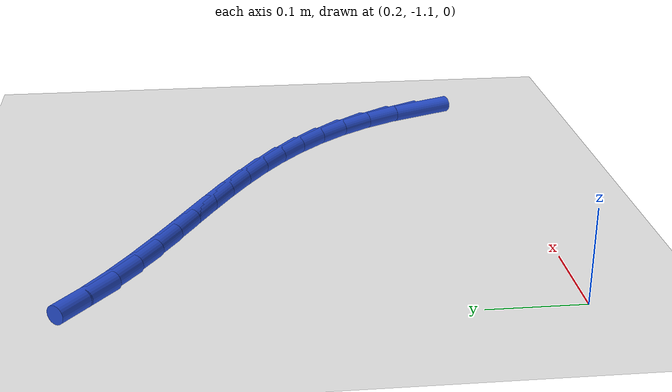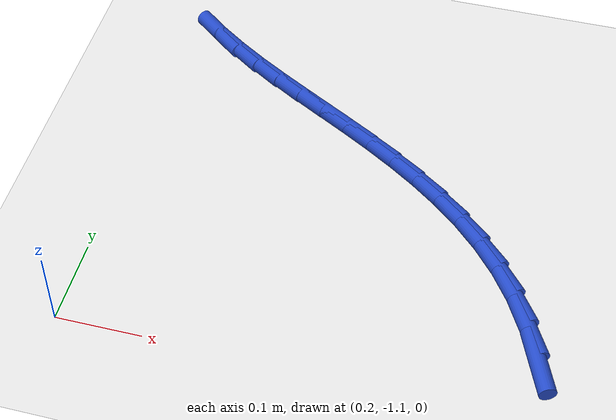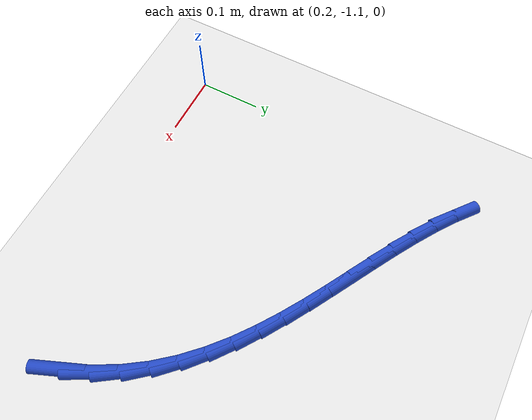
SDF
<sdf version="1.6">
 <world name="default">
  <model name="ground_plane">
   <static>1</static>
   <link name="link">
    <collision name="collision">
     <geometry><plane><normal>0 0 1</normal><size>100 100</size></plane></geometry>
     <surface><friction><ode><mu>100</mu><mu2>50</mu2></ode></friction></surface>
    </collision>
    <visual name="visual">
     <cast_shadows>0</cast_shadows>
     <geometry><plane><normal>0 0 1</normal><size>100 100</size></plane></geometry>
     <material>
      <script><uri>file://media/materials/scripts/gazebo.material</uri><name>Gazebo/WhiteGlow</name></script>
     </material>
    </visual>
   </link>
  </model>
  <model name="line">
   <link name="link_176">
    <pose>0.7184735958914094 -1.0326458961215141 0.01 0 1.57 -1.1803685030335493</pose>
    <collision name="collision">
     <geometry><cylinder><radius>0.01</radius><length>0.08</length></cylinder></geometry>
    </collision>
    <visual name="visual">
     <material>
      <script><name>Gazebo/Blue</name><uri>file://media/materials/scripts/gazebo.material</uri></script>
     </material>
     <geometry><cylinder><radius>0.01</radius><length>0.08</length></cylinder></geometry>
    </visual>
   </link>
   <link name="link_177">
    <pose>0.7015870094879169 -0.991614729692497 0.01 0 1.57 -1.0764579727777817</pose>
    <collision name="collision">
     <geometry><cylinder><radius>0.01</radius><length>0.08</length></cylinder></geometry>
    </collision>
    <visual name="visual">
     <material>
      <script><name>Gazebo/Blue</name><uri>file://media/materials/scripts/gazebo.material</uri></script>
     </material>
     <geometry><cylinder><radius>0.01</radius><length>0.08</length></cylinder></geometry>
    </visual>
   </link>
   <link name="link_178">
    <pose>0.6815076256402162 -0.9543598830570735 0.01 0 1.57 -0.9748035762381747</pose>
    <collision name="collision">
     <geometry><cylinder><radius>0.01</radius><length>0.08</length></cylinder></geometry>
    </collision>
    <visual name="visual">
     <material>
      <script><name>Gazebo/Blue</name><uri>file://media/materials/scripts/gazebo.material</uri></script>
     </material>
     <geometry><cylinder><radius>0.01</radius><length>0.08</length></cylinder></geometry>
    </visual>
   </link>
   <link name="link_179">
    <pose>0.6585572687066477 -0.9205232761111476 0.01 0 1.57 -0.8789047628901737</pose>
    <collision name="collision">
     <geometry><cylinder><radius>0.01</radius><length>0.08</length></cylinder></geometry>
    </collision>
    <visual name="visual">
     <material>
      <script><name>Gazebo/Blue</name><uri>file://media/materials/scripts/gazebo.material</uri></script>
     </material>
     <geometry><cylinder><radius>0.01</radius><length>0.08</length></cylinder></geometry>
    </visual>
   </link>
   <link name="link_180">
    <pose>0.6330579898617044 -0.8897464164690277 0.01 0 1.57 -0.7916605216029585</pose>
    <collision name="collision">
     <geometry><cylinder><radius>0.01</radius><length>0.08</length></cylinder></geometry>
    </collision>
    <visual name="visual">
     <material>
      <script><name>Gazebo/Blue</name><uri>file://media/materials/scripts/gazebo.material</uri></script>
     </material>
     <geometry><cylinder><radius>0.01</radius><length>0.08</length></cylinder></geometry>
    </visual>
   </link>
   <link name="link_181">
    <pose>0.605331840279879 -0.8616708117450221 0.01 0 1.57 -0.715104873661095</pose>
    <collision name="collision">
     <geometry><cylinder><radius>0.01</radius><length>0.08</length></cylinder></geometry>
    </collision>
    <visual name="visual">
     <material>
      <script><name>Gazebo/Blue</name><uri>file://media/materials/scripts/gazebo.material</uri></script>
     </material>
     <geometry><cylinder><radius>0.01</radius><length>0.08</length></cylinder></geometry>
    </visual>
   </link>
   <link name="link_182">
    <pose>0.5757008711356639 -0.8359379695534392 0.01 0 1.57 -0.6504009023368971</pose>
    <collision name="collision">
     <geometry><cylinder><radius>0.01</radius><length>0.08</length></cylinder></geometry>
    </collision>
    <visual name="visual">
     <material>
      <script><name>Gazebo/Blue</name><uri>file://media/materials/scripts/gazebo.material</uri></script>
     </material>
     <geometry><cylinder><radius>0.01</radius><length>0.08</length></cylinder></geometry>
    </visual>
   </link>
   <link name="link_183">
    <pose>0.5444871336035514 -0.8121893975085868 0.01 0 1.57 -0.5980219185298207</pose>
    <collision name="collision">
     <geometry><cylinder><radius>0.01</radius><length>0.08</length></cylinder></geometry>
    </collision>
    <visual name="visual">
     <material>
      <script><name>Gazebo/Blue</name><uri>file://media/materials/scripts/gazebo.material</uri></script>
     </material>
     <geometry><cylinder><radius>0.01</radius><length>0.08</length></cylinder></geometry>
    </visual>
   </link>
   <link name="link_184">
    <pose>0.5120126788580357 -0.7900666032247747 0.01 0 1.57 -0.5580031284356064</pose>
    <collision name="collision">
     <geometry><cylinder><radius>0.01</radius><length>0.08</length></cylinder></geometry>
    </collision>
    <visual name="visual">
     <material>
      <script><name>Gazebo/Blue</name><uri>file://media/materials/scripts/gazebo.material</uri></script>
     </material>
     <geometry><cylinder><radius>0.01</radius><length>0.08</length></cylinder></geometry>
    </visual>
   </link>
   <link name="link_185">
    <pose>0.4785995580736087 -0.7692110943163106 0.01 0 1.57 -0.5301775027543826</pose>
    <collision name="collision">
     <geometry><cylinder><radius>0.01</radius><length>0.08</length></cylinder></geometry>
    </collision>
    <visual name="visual">
     <material>
      <script><name>Gazebo/Blue</name><uri>file://media/materials/scripts/gazebo.material</uri></script>
     </material>
     <geometry><cylinder><radius>0.01</radius><length>0.08</length></cylinder></geometry>
    </visual>
   </link>
   <link name="link_186">
    <pose>0.4445698224247631 -0.7492643783975028 0.01 0 1.57 -0.514356902534239</pose>
    <collision name="collision">
     <geometry><cylinder><radius>0.01</radius><length>0.08</length></cylinder></geometry>
    </collision>
    <visual name="visual">
     <material>
      <script><name>Gazebo/Blue</name><uri>file://media/materials/scripts/gazebo.material</uri></script>
     </material>
     <geometry><cylinder><radius>0.01</radius><length>0.08</length></cylinder></geometry>
    </visual>
   </link>
   <link name="link_187">
    <pose>0.41024552308599177 -0.7298679630826599 0.01 0 1.57 -0.510452639516769</pose>
    <collision name="collision">
     <geometry><cylinder><radius>0.01</radius><length>0.08</length></cylinder></geometry>
    </collision>
    <visual name="visual">
     <material>
      <script><name>Gazebo/Blue</name><uri>file://media/materials/scripts/gazebo.material</uri></script>
     </material>
     <geometry><cylinder><radius>0.01</radius><length>0.08</length></cylinder></geometry>
    </visual>
   </link>
   <link name="link_188">
    <pose>0.3759487112317874 -0.7106633559860902 0.01 0 1.57 -0.5185429907525657</pose>
    <collision name="collision">
     <geometry><cylinder><radius>0.01</radius><length>0.08</length></cylinder></geometry>
    </collision>
    <visual name="visual">
     <material>
      <script><name>Gazebo/Blue</name><uri>file://media/materials/scripts/gazebo.material</uri></script>
     </material>
     <geometry><cylinder><radius>0.01</radius><length>0.08</length></cylinder></geometry>
    </visual>
   </link>
   <link name="link_189">
    <pose>0.3420014380366418 -0.6912920647221015 0.01 0 1.57 -0.5388946891243781</pose>
    <collision name="collision">
     <geometry><cylinder><radius>0.01</radius><length>0.08</length></cylinder></geometry>
    </collision>
    <visual name="visual">
     <material>
      <script><name>Gazebo/Blue</name><uri>file://media/materials/scripts/gazebo.material</uri></script>
     </material>
     <geometry><cylinder><radius>0.01</radius><length>0.08</length></cylinder></geometry>
    </visual>
   </link>
   <link name="link_190">
    <pose>0.3087257546750495 -0.6713955969050034 0.01 0 1.57 -0.5719377168719832</pose>
    <collision name="collision">
     <geometry><cylinder><radius>0.01</radius><length>0.08</length></cylinder></geometry>
    </collision>
    <visual name="visual">
     <material>
      <script><name>Gazebo/Blue</name><uri>file://media/materials/scripts/gazebo.material</uri></script>
     </material>
     <geometry><cylinder><radius>0.01</radius><length>0.08</length></cylinder></geometry>
    </visual>
   </link>
   <link name="link_191">
    <pose>0.27644371232150233 -0.6506154601491039 0.01 0 1.57 -0.6181824530690339</pose>
    <collision name="collision">
     <geometry><cylinder><radius>0.01</radius><length>0.08</length></cylinder></geometry>
    </collision>
    <visual name="visual">
     <material>
      <script><name>Gazebo/Blue</name><uri>file://media/materials/scripts/gazebo.material</uri></script>
     </material>
     <geometry><cylinder><radius>0.01</radius><length>0.08</length></cylinder></geometry>
    </visual>
   </link>
   <link name="link_192">
    <pose>0.24547736215049307 -0.6285931620687112 0.01 0 1.57 -0.6780599514306441</pose>
    <collision name="collision">
     <geometry><cylinder><radius>0.01</radius><length>0.08</length></cylinder></geometry>
    </collision>
    <visual name="visual">
     <material>
      <script><name>Gazebo/Blue</name><uri>file://media/materials/scripts/gazebo.material</uri></script>
     </material>
     <geometry><cylinder><radius>0.01</radius><length>0.08</length></cylinder></geometry>
    </visual>
   </link>
  </model>
 </world>
</sdf>
